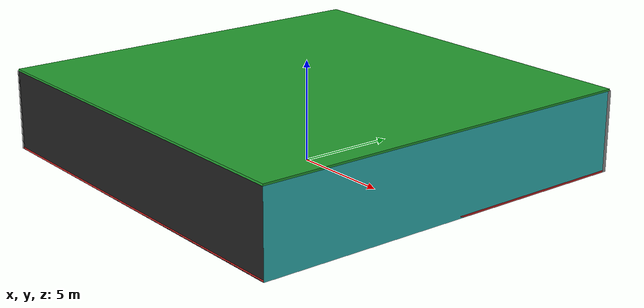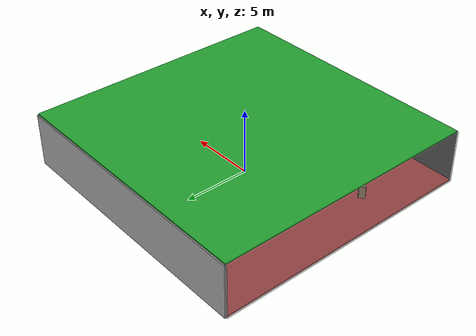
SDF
<sdf version="1.4">
 <world name="default">
  <physics type="ode">
   <max_step_size>0.001</max_step_size>
   <real_time_factor>1</real_time_factor>
   <real_time_update_rate>1000</real_time_update_rate>
   <gravity>0 0 -9.8</gravity>
  </physics>
  <scene><ambient>0.4 0.4 0.4 1</ambient><background>0.7 0.7 0.7 1</background><shadows>1</shadows></scene>
  <model name="Surrounding">
   <static>1</static>
   <link name="Ceiling">
    <collision name="Ceiling_Collision"><geometry><box><size>20 20 0.1</size></box></geometry></collision>
    <visual name="Ceiling_Visual">
     <geometry><box><size>20 20 0.1</size></box></geometry>
     <material>
      <script><uri>file://media/materials/scripts/gazebo.material</uri><name>Gazebo/GreenGlow</name></script>
     </material>
    </visual>
    <pose>0 0 4.05 0 0 0</pose>
   </link>
   <link name="Wall_South">
    <collision name="Wall_South_Collision">
     <geometry><box><size>20 0 4</size></box></geometry>
     <pose>0 0 2 0 -0 0</pose>
    </collision>
    <visual name="Wall_South_Visual">
     <pose>0 0 2 0 -0 0</pose>
     <geometry><box><size>20 0 4</size></box></geometry>
     <material>
      <script><uri>file://media/materials/scripts/gazebo.material</uri><name>Gazebo/Black</name></script>
     </material>
    </visual>
    <velocity_decay><linear>0</linear><angular>0</angular></velocity_decay>
    <pose>0 -10 0 0 -0 0</pose>
   </link>
   <link name="Wall_East">
    <collision name="Wall_21_Collision">
     <geometry><box><size>20 0 4</size></box></geometry>
     <pose>0 0 2 0 -0 0</pose>
    </collision>
    <visual name="Wall_21_Visual">
     <pose>0 0 2 0 -0 0</pose>
     <geometry><box><size>20 0 4</size></box></geometry>
     <material>
      <script>
       <uri>file://media/materials/scripts/gazebo.material</uri>
       <name>Gazebo/TurquoiseGlowOutline</name>
      </script>
     </material>
    </visual>
    <velocity_decay><linear>0</linear><angular>0</angular></velocity_decay>
    <pose>10 0 0 0 -0 1.5708</pose>
   </link>
   <link name="Wall_North">
    <collision name="Wall_22_Collision">
     <geometry><box><size>20 0.2 4</size></box></geometry>
     <pose>0 0 2 0 -0 0</pose>
    </collision>
    <visual name="Wall_22_Visual">
     <pose>0 0 2 0 -0 0</pose>
     <geometry><box><size>20 0.2 4</size></box></geometry>
     <material>
      <script><uri>file://media/materials/scripts/gazebo.material</uri><name>Gazebo/GreyGradientSky</name></script>
     </material>
    </visual>
    <velocity_decay><linear>0</linear><angular>0</angular></velocity_decay>
    <pose>0 10 0 0 -0 0</pose>
   </link>
   <link name="Wall_West">
    <collision name="Wall_23_Collision">
     <geometry><box><size>20 0.2 4</size></box></geometry>
     <pose>0 0 2 0 -0 0</pose>
    </collision>
    <visual name="Wall_23_Visual">
     <pose>0 0 2 0 -0 0</pose>
     <geometry><box><size>20 0.2 4</size></box></geometry>
     <material>
      <script><uri>file://media/materials/scripts/gazebo.material</uri><name>Gazebo/GreyTransparent</name></script>
     </material>
    </visual>
    <velocity_decay><linear>0</linear><angular>0</angular></velocity_decay>
    <pose>-10 0 0 0 0 -1.5708</pose>
   </link>
   <link name="Ground_link">
    <collision name="collision">
     <pose>0 0 .05 0 -0 0</pose>
     <geometry><box><size>20 20 0.1</size></box></geometry>
    </collision>
    <visual name="visual">
     <pose>0 0 .05 0 -0 0</pose>
     <geometry><box><size>20 20 0.1</size></box></geometry>
     <material>
      <script><uri>file://media/materials/scripts/gazebo.material</uri><name>Gazebo/RedGlow</name></script>
     </material>
    </visual>
   </link>
   <static>1</static>
  </model>
  <spherical_coordinates>
   <surface_model>EARTH_WGS84</surface_model>
   <latitude_deg>0</latitude_deg>
   <longitude_deg>0</longitude_deg>
   <elevation>0</elevation>
   <heading_deg>0</heading_deg>
  </spherical_coordinates>
  <light name="lightball_0" type="diffuse">
   <diffuse>0.8 0.8 0.8 1</diffuse>
   <specular>0.2 0.2 0.2 1</specular>
   <attenuation>
    <range>100</range>
    <constant>0.7</constant>
    <linear>0.01</linear>
    <quadratic>0.001</quadratic>
   </attenuation>
   <direction>-0.5 0.1 -0.9</direction>
   <pose>-3.5406376875 -1.98281898903 2.56265167737 0 0 0</pose>
  </light>
  <light name="lightball_1" type="diffuse">
   <diffuse>0.8 0.8 0.8 1</diffuse>
   <specular>0.2 0.2 0.2 1</specular>
   <attenuation>
    <range>100</range>
    <constant>0.7</constant>
    <linear>0.01</linear>
    <quadratic>0.001</quadratic>
   </attenuation>
   <direction>-0.5 0.1 -0.9</direction>
   <pose>2.1342386142 -8.30035735702 1.33979763222 0 0 0</pose>
  </light>
  <light name="lightball_2" type="diffuse">
   <diffuse>0.8 0.8 0.8 1</diffuse>
   <specular>0.2 0.2 0.2 1</specular>
   <attenuation>
    <range>100</range>
    <constant>0.7</constant>
    <linear>0.01</linear>
    <quadratic>0.001</quadratic>
   </attenuation>
   <direction>-0.5 0.1 -0.9</direction>
   <pose>3.06959404905 -4.86144332229 2.17067382601 0 0 0</pose>
  </light>
  <light name="lightball_3" type="diffuse">
   <diffuse>0.8 0.8 0.8 1</diffuse>
   <specular>0.2 0.2 0.2 1</specular>
   <attenuation>
    <range>100</range>
    <constant>0.7</constant>
    <linear>0.01</linear>
    <quadratic>0.001</quadratic>
   </attenuation>
   <direction>-0.5 0.1 -0.9</direction>
   <pose>2.58732786285 5.21735314435 2.89639586488 0 0 0</pose>
  </light>
  <light name="lightball_4" type="diffuse">
   <diffuse>0.8 0.8 0.8 1</diffuse>
   <specular>0.2 0.2 0.2 1</specular>
   <attenuation>
    <range>100</range>
    <constant>0.7</constant>
    <linear>0.01</linear>
    <quadratic>0.001</quadratic>
   </attenuation>
   <direction>-0.5 0.1 -0.9</direction>
   <pose>0.873962123873 3.8002763897 3.74303629697 0 0 0</pose>
  </light>
  <light name="lightball_5" type="diffuse">
   <diffuse>0.8 0.8 0.8 1</diffuse>
   <specular>0.2 0.2 0.2 1</specular>
   <attenuation>
    <range>100</range>
    <constant>0.7</constant>
    <linear>0.01</linear>
    <quadratic>0.001</quadratic>
   </attenuation>
   <direction>-0.5 0.1 -0.9</direction>
   <pose>-0.0454027788974 8.79824615486 3.7974220009 0 0 0</pose>
  </light>
  <light name="lightball_6" type="diffuse">
   <diffuse>0.8 0.8 0.8 1</diffuse>
   <specular>0.2 0.2 0.2 1</specular>
   <attenuation>
    <range>100</range>
    <constant>0.7</constant>
    <linear>0.01</linear>
    <quadratic>0.001</quadratic>
   </attenuation>
   <direction>-0.5 0.1 -0.9</direction>
   <pose>-0.0493920114468 6.06656837011 0.533188604779 0 0 0</pose>
  </light>
  <light name="lightball_7" type="diffuse">
   <diffuse>0.8 0.8 0.8 1</diffuse>
   <specular>0.2 0.2 0.2 1</specular>
   <attenuation>
    <range>100</range>
    <constant>0.7</constant>
    <linear>0.01</linear>
    <quadratic>0.001</quadratic>
   </attenuation>
   <direction>-0.5 0.1 -0.9</direction>
   <pose>0.328331606296 -8.48804746746 3.25795563925 0 0 0</pose>
  </light>
  <light name="lightball_8" type="diffuse">
   <diffuse>0.8 0.8 0.8 1</diffuse>
   <specular>0.2 0.2 0.2 1</specular>
   <attenuation>
    <range>100</range>
    <constant>0.7</constant>
    <linear>0.01</linear>
    <quadratic>0.001</quadratic>
   </attenuation>
   <direction>-0.5 0.1 -0.9</direction>
   <pose>9.11760690693 3.82834091457 0.686337764047 0 0 0</pose>
  </light>
  <light name="lightball_9" type="diffuse">
   <diffuse>0.8 0.8 0.8 1</diffuse>
   <specular>0.2 0.2 0.2 1</specular>
   <attenuation>
    <range>100</range>
    <constant>0.7</constant>
    <linear>0.01</linear>
    <quadratic>0.001</quadratic>
   </attenuation>
   <direction>-0.5 0.1 -0.9</direction>
   <pose>3.7218595875 0.00740599214719 1.72214025375 0 0 0</pose>
  </light>
  <light name="lightball_10" type="diffuse">
   <diffuse>0.8 0.8 0.8 1</diffuse>
   <specular>0.2 0.2 0.2 1</specular>
   <attenuation>
    <range>100</range>
    <constant>0.7</constant>
    <linear>0.01</linear>
    <quadratic>0.001</quadratic>
   </attenuation>
   <direction>-0.5 0.1 -0.9</direction>
   <pose>-8.90768655451 4.48742491882 1.36541979581 0 0 0</pose>
  </light>
  <light name="lightball_11" type="diffuse">
   <diffuse>0.8 0.8 0.8 1</diffuse>
   <specular>0.2 0.2 0.2 1</specular>
   <attenuation>
    <range>100</range>
    <constant>0.7</constant>
    <linear>0.01</linear>
    <quadratic>0.001</quadratic>
   </attenuation>
   <direction>-0.5 0.1 -0.9</direction>
   <pose>-2.54013747808 -8.56146595017 1.65000515296 0 0 0</pose>
  </light>
  <light name="lightball_12" type="diffuse">
   <diffuse>0.8 0.8 0.8 1</diffuse>
   <specular>0.2 0.2 0.2 1</specular>
   <attenuation>
    <range>100</range>
    <constant>0.7</constant>
    <linear>0.01</linear>
    <quadratic>0.001</quadratic>
   </attenuation>
   <direction>-0.5 0.1 -0.9</direction>
   <pose>-5.72457074629 -0.65376936633 2.1433195918 0 0 0</pose>
  </light>
  <include><uri>model://cabinet</uri><pose>-7.34351263838 -4.00895268041 0 0 0 2.32234759126</pose></include>
  <include>
   <uri>model://construction_cone</uri>
   <pose>-4.38923709794 4.44373314124 0 0 0 1.47887055768</pose>
  </include>
  <include><uri>model://cabinet</uri><pose>-0.647351469151 3.64148721286 0 0 0 1.25064657691</pose></include>
  <include>
   <uri>model://robocup_3Dsim_goal</uri>
   <pose>1.40449510331 3.87758278612 0 0 0 0.330501535361</pose>
  </include>
  <include><uri>model://table</uri><pose>8.62026031502 -2.52574652992 0 0 0 1.07302760802</pose></include>
 </world>
</sdf>

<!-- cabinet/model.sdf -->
<sdf version="1.5">
  <model name="cabinet">
    <static>true</static>
    <link name="cabinet_bottom_plate">
      <inertial>
        <pose>0 0 -1 0 0 0</pose>
        <inertia>
          <ixx>2.050000</ixx>
          <ixy>0</ixy>
          <ixz>0</ixz>
          <iyy>2.050000</iyy>
          <iyz>0</iyz>
          <izz>2.050000</izz>
        </inertia>
        <mass>25.000000</mass>
      </inertial>
      <collision name="cabinet_bottom_plate_geom">
        <pose>0 0 0.010000 0 0 0</pose>
        <geometry>
          <box>
            <size>0.450000 0.450000 0.020000</size>
          </box>
        </geometry>
      </collision>
      <visual name="cabinet_bottom_plate_geom_visual">
        <pose>0 0 0.010000 0 0 0</pose>
        <geometry>
          <box>
            <size>0.450000 0.450000 0.020000</size>
          </box>
        </geometry>
        <material>
          <script>
            <uri>model://media/materials/scripts/gazebo.material</uri>
            <name>Gazebo/Wood</name>
          </script>
        </material>
      </visual>
      <collision name="cabinet_bottom_plate_geom_cabinet_back_plate">
        <pose>0.235000 0 0.510000 0 0 0</pose>
        <geometry>
          <box>
            <size>0.020000 0.450000 1.020000</size>
          </box>
        </geometry>
      </collision>
      <visual name="cabinet_bottom_plate_geom_cabinet_back_plate_visual">
        <pose>0.235000 0 0.510000 0 0 0</pose>
        <geometry>
          <box>
            <size>0.020000 0.450000 1.020000</size>
          </box>
        </geometry>
        <material>
          <script>
            <uri>model://media/materials/scripts/gazebo.material</uri>
            <name>Gazebo/Wood</name>
          </script>
        </material>
      </visual>
      <collision name="cabinet_bottom_plate_geom_cabinet_left_plate">
        <pose>0 0.235000 0.510000 0 0 0</pose>
        <geometry>
          <box>
            <size>0.450000 0.020000 1.020000</size>
          </box>
        </geometry>
      </collision>
      <visual name="cabinet_bottom_plate_geom_cabinet_left_plate_visual">
        <pose>0 0.235000 0.510000 0 0 0</pose>
        <geometry>
          <box>
            <size>0.450000 0.020000 1.020000</size>
          </box>
        </geometry>
        <material>
          <script>
            <uri>model://media/materials/scripts/gazebo.material</uri>
            <name>Gazebo/Wood</name>
          </script>
        </material>
      </visual>
      <collision name="cabinet_bottom_plate_geom_cabinet_middle_plate">
        <pose>0 0 0.510000 0 0 0</pose>
        <geometry>
          <box>
            <size>0.450000 0.450000 0.020000</size>
          </box>
        </geometry>
      </collision>
      <visual name="cabinet_bottom_plate_geom_cabinet_middle_plate_visual">
        <pose>0 0 0.510000 0 0 0</pose>
        <geometry>
          <box>
            <size>0.450000 0.450000 0.020000</size>
          </box>
        </geometry>
        <material>
          <script>
            <uri>model://media/materials/scripts/gazebo.material</uri>
            <name>Gazebo/Wood</name>
          </script>
        </material>
      </visual>
      <collision name="cabinet_bottom_plate_geom_cabinet_right_plate">
        <pose>0 -0.235000 0.510000 0 0 0</pose>
        <geometry>
          <box>
            <size>0.450000 0.020000 1.020000</size>
          </box>
        </geometry>
      </collision>
      <visual name="cabinet_bottom_plate_geom_cabinet_right_plate_visual">
        <pose>0 -0.235000 0.510000 0 0 0</pose>
        <geometry>
          <box>
            <size>0.450000 0.020000 1.020000</size>
          </box>
        </geometry>
        <material>
          <script>
            <uri>model://media/materials/scripts/gazebo.material</uri>
            <name>Gazebo/Wood</name>
          </script>
        </material>
      </visual>
      <collision name="cabinet_bottom_plate_geom_cabinet_top_plate">
        <pose>0 0 1.010000 0 0 0</pose>
        <geometry>
          <box>
            <size>0.450000 0.450000 0.020000</size>
          </box>
        </geometry>
      </collision>
      <visual name="cabinet_bottom_plate_geom_cabinet_top_plate_visual">
        <pose>0 0 1.010000 0 0 0</pose>
        <geometry>
          <box>
            <size>0.450000 0.450000 0.020000</size>
          </box>
        </geometry>
        <material>
          <script>
            <uri>model://media/materials/scripts/gazebo.material</uri>
            <name>Gazebo/Wood</name>
          </script>
        </material>
      </visual>
    </link>
  </model>
</sdf>

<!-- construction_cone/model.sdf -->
<sdf version="1.5">
  <model name="Construction Cone">
    <link name="link">
      <collision name="collision">
        <geometry>
          <mesh>
            <scale>10 10 10</scale>
            <uri>file://isr-testbed/construction_cone/meshes/construction_cone.dae</uri>
          </mesh>
        </geometry>
      </collision>
      <visual name="visual">
        <geometry>
          <mesh>
            <scale>10 10 10</scale>
            <uri>file://isr-testbed/construction_cone/meshes/construction_cone.dae</uri>
          </mesh>
        </geometry>
      </visual>
    </link>
  </model>
</sdf>

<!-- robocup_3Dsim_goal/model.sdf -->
<sdf version="1.5">
  <model name="robocup_3d_goal">
    <static>true</static>
    <link name="left_post">
      <pose>0 1.05 0.45 0 0 0</pose>
      <collision name="collision">
        <geometry>
          <cylinder>
            <radius>0.05</radius>
            <length>0.9</length>
          </cylinder>
        </geometry>
      </collision>
      <visual name="visual">
        <geometry>
          <cylinder>
            <radius>0.05</radius>
            <length>0.9</length>
          </cylinder>
        </geometry>
        <material>
          <script>
            <uri>file://media/materials/scripts/gazebo.material</uri>
            <name>Gazebo/ZincYellow</name>
          </script>
        </material>
      </visual>
    </link>
    <link name="left_support_horiz_lower">
      <pose>0.30 1.05 0.01 0 0 0</pose>
      <collision name="collision">
        <geometry>
          <box>
            <size>0.50 0.02 0.02</size>
          </box>
        </geometry>
      </collision>
      <visual name="visual">
        <geometry>
          <box>
            <size>0.50 0.02 0.02</size>
          </box>
        </geometry>
        <material>
          <script>
            <uri>file://media/materials/scripts/gazebo.material</uri>
            <name>Gazebo/White</name>
          </script>
        </material>
      </visual>
    </link>
    <link name="left_support_horiz_upper">
      <pose>0.30 1.05 0.79 0 0 0</pose>
      <collision name="collision">
        <geometry>
          <box>
            <size>0.50 0.02 0.02</size>
          </box>
        </geometry>
      </collision>
      <visual name="visual">
        <geometry>
          <box>
            <size>0.50 0.02 0.02</size>
          </box>
        </geometry>
        <material>
          <script>
            <uri>file://media/materials/scripts/gazebo.material</uri>
            <name>Gazebo/White</name>
          </script>
        </material>
      </visual>
    </link>
    <link name="left_support_vertical">
      <pose>0.56 1.05 0.4 0 1.5708 0</pose>
      <collision name="collision">
        <geometry>
          <box>
            <size>0.80 0.02 0.02</size>
          </box>
        </geometry>
      </collision>
      <visual name="visual">
        <geometry>
          <box>
            <size>0.80 0.02 0.02</size>
          </box>
        </geometry>
        <material>
          <script>
            <uri>file://media/materials/scripts/gazebo.material</uri>
            <name>Gazebo/White</name>
          </script>
        </material>
      </visual>
    </link>
    <link name="right_support_horiz_lower">
      <pose>0.30 -1.05 0.01 0 0 0</pose>
      <collision name="collision">
        <geometry>
          <box>
            <size>0.50 0.02 0.02</size>
          </box>
        </geometry>
      </collision>
      <visual name="visual">
        <geometry>
          <box>
            <size>0.50 0.02 0.02</size>
          </box>
        </geometry>
        <material>
          <script>
            <uri>file://media/materials/scripts/gazebo.material</uri>
            <name>Gazebo/White</name>
          </script>
        </material>
      </visual>
    </link>
    <link name="right_support_horiz_upper">
      <pose>0.30 -1.05 0.79 0 0 0</pose>
      <collision name="collision">
        <geometry>
          <box>
            <size>0.50 0.02 0.02</size>
          </box>
        </geometry>
      </collision>
      <visual name="visual">
        <geometry>
          <box>
            <size>0.50 0.02 0.02</size>
          </box>
        </geometry>
        <material>
          <script>
            <uri>file://media/materials/scripts/gazebo.material</uri>
            <name>Gazebo/White</name>
          </script>
        </material>
      </visual>
    </link>
    <link name="right_support_vertical">
      <pose>0.56 -1.05 0.4 0 1.5708 0</pose>
      <collision name="collision">
        <geometry>
          <box>
            <size>0.80 0.02 0.02</size>
          </box>
        </geometry>
      </collision>
      <visual name="visual">
        <geometry>
          <box>
            <size>0.80 0.02 0.02</size>
          </box>
        </geometry>
        <material>
          <script>
            <uri>file://media/materials/scripts/gazebo.material</uri>
            <name>Gazebo/White</name>
          </script>
        </material>
      </visual>
    </link>
    <link name="center_support_horiz_lower">
      <pose>0.56 0 0.01 0 1.5708 0</pose>
      <collision name="collision">
        <geometry>
          <box>
            <size>0.02 2.08 0.02</size>
          </box>
        </geometry>
      </collision>
      <visual name="visual">
        <geometry>
          <box>
            <size>0.02 2.08 0.02</size>
          </box>
        </geometry>
        <material>
          <script>
            <uri>file://media/materials/scripts/gazebo.material</uri>
            <name>Gazebo/White</name>
          </script>
        </material>
      </visual>
    </link>
    <link name="center_support_horiz_upper">
      <pose>0.56 0 0.79 0 1.5708 0</pose>
      <collision name="collision">
        <geometry>
          <box>
            <size>0.02 2.08 0.02</size>
          </box>
        </geometry>
      </collision>
      <visual name="visual">
        <geometry>
          <box>
            <size>0.02 2.08 0.02</size>
          </box>
        </geometry>
        <material>
          <script>
            <uri>file://media/materials/scripts/gazebo.material</uri>
            <name>Gazebo/White</name>
          </script>
        </material>
      </visual>
    </link>
    <link name="right_post">
      <pose>0 -1.05 0.45 0 0 0</pose>
      <collision name="collision">
        <geometry>
          <cylinder>
            <radius>0.05</radius>
            <length>0.9</length>
          </cylinder>
        </geometry>
      </collision>
      <visual name="visual">
        <geometry>
          <cylinder>
            <radius>0.05</radius>
            <length>0.9</length>
          </cylinder>
        </geometry>
        <material>
          <script>
            <uri>file://media/materials/scripts/gazebo.material</uri>
            <name>Gazebo/ZincYellow</name>
          </script>
        </material>
      </visual>
    </link>
    <link name="crossbar">
      <pose>0 0 0.85 1.57 1.57 0</pose>
      <collision name="collision">
        <geometry>
          <cylinder>
            <radius>0.05</radius>
            <length>2.0</length>
          </cylinder>
        </geometry>
      </collision>
      <visual name="visual">
        <geometry>
          <cylinder>
            <radius>0.05</radius>
            <length>2.0</length>
          </cylinder>
        </geometry>
        <material>
          <script>
            <uri>file://media/materials/scripts/gazebo.material</uri>
            <name>Gazebo/ZincYellow</name>
          </script>
        </material>
      </visual>
    </link>
    <link name="center_net">
      <pose>0.56 0 0.40 0 0 0</pose>
      <collision name="collision">
        <geometry>
          <box>
            <size>0.01 2.1 0.80</size>
          </box>
        </geometry>
      </collision>
      <visual name="visual">
        <geometry>
          <box>
            <size>0.01 2.1 0.80</size>
          </box>
        </geometry>
        <material>
          <script>
            <uri>model://../model_source/models/robocup09_spl_field/materials/scripts/</uri>
            <uri>model://../model_source/models/robocup09_spl_field/materials/textures/</uri>
            <name>RoboCup/Net</name>
          </script>
        </material>
      </visual>
    </link>
    <link name="left_net">
      <pose>0.30 1.05 0.40 0 0 0</pose>
      <collision name="collision">
        <geometry>
          <box>
            <size>0.50 0.01 0.76</size>
          </box>
        </geometry>
      </collision>
      <visual name="visual">
        <geometry>
          <box>
            <size>0.50 0.01 0.76</size>
          </box>
        </geometry>
        <material>
          <script>
            <uri>model://../model_source/models/robocup09_spl_field/materials/scripts/</uri>
            <uri>model://../model_source/models/robocup09_spl_field/materials/textures/</uri>
            <name>RoboCup/Net</name>
          </script>
        </material>
      </visual>
    </link>
    <link name="right_net">
      <pose>0.30 -1.05 0.40 0 0 0</pose>
      <collision name="collision">
        <geometry>
          <box>
            <size>0.50 0.01 0.76</size>
          </box>
        </geometry>
      </collision>
      <visual name="visual">
        <geometry>
          <box>
            <size>0.50 0.01 0.76</size>
          </box>
        </geometry>
        <material>
          <script>
            <uri>model://../model_source/models/robocup09_spl_field/materials/scripts/</uri>
            <uri>model://../model_source/models/robocup09_spl_field/materials/textures/</uri>
            <name>RoboCup/Net</name>
          </script>
        </material>
      </visual>
    </link>
  </model>
</sdf>

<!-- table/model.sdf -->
<sdf version="1.5">
  <model name="table">
    <static>true</static>
    <link name="link">
      <collision name="surface">
        <pose>0 0 1.0 0 0 0</pose>
        <geometry>
          <box>
            <size>1.5 0.8 0.03</size>
          </box>
        </geometry>
        <surface>
          <friction>
            <ode>
              <mu>0.6</mu>
              <mu2>0.6</mu2>
            </ode>
          </friction>
        </surface>
      </collision>
      <visual name="visual1">
        <pose>0 0 1.0 0 0 0</pose>
        <geometry>
          <box>
            <size>1.5 0.8 0.03</size>
          </box>
        </geometry>
        <material>
          <script>
            <uri>model://media/materials/scripts/gazebo.material</uri>
            <name>Gazebo/Wood</name>
          </script>
        </material>
      </visual>
      <collision name="front_left_leg">
        <pose>0.68 0.38 0.5 0 0 0</pose>
        <geometry>
          <cylinder>
            <radius>0.02</radius>
            <length>1.0</length>
          </cylinder>
        </geometry>
      </collision>
      <visual name="front_left_leg">
        <pose>0.68 0.38 0.5 0 0 0</pose>
        <geometry>
          <cylinder>
            <radius>0.02</radius>
            <length>1.0</length>
          </cylinder>
        </geometry>
        <material>
          <script>
            <uri>model://media/materials/scripts/gazebo.material</uri>
            <name>Gazebo/Grey</name>
          </script>
        </material>
      </visual>
      <collision name="front_right_leg">
        <pose>0.68 -0.38 0.5 0 0 0</pose>
        <geometry>
          <cylinder>
            <radius>0.02</radius>
            <length>1.0</length>
          </cylinder>
        </geometry>
      </collision>
      <visual name="front_right_leg">
        <pose>0.68 -0.38 0.5 0 0 0</pose>
        <geometry>
          <cylinder>
            <radius>0.02</radius>
            <length>1.0</length>
          </cylinder>
        </geometry>
        <material>
          <script>
            <uri>model://media/materials/scripts/gazebo.material</uri>
            <name>Gazebo/Grey</name>
          </script>
        </material>
      </visual>
      <collision name="back_right_leg">
        <pose>-0.68 -0.38 0.5 0 0 0</pose>
        <geometry>
          <cylinder>
            <radius>0.02</radius>
            <length>1.0</length>
          </cylinder>
        </geometry>
      </collision>
      <visual name="back_right_leg">
        <pose>-0.68 -0.38 0.5 0 0 0</pose>
        <geometry>
          <cylinder>
            <radius>0.02</radius>
            <length>1.0</length>
          </cylinder>
        </geometry>
        <material>
          <script>
            <uri>model://media/materials/scripts/gazebo.material</uri>
            <name>Gazebo/Grey</name>
          </script>
        </material>
      </visual>
      <collision name="back_left_leg">
        <pose>-0.68 0.38 0.5 0 0 0</pose>
        <geometry>
          <cylinder>
            <radius>0.02</radius>
            <length>1.0</length>
          </cylinder>
        </geometry>
      </collision>
      <visual name="back_left_leg">
        <pose>-0.68 0.38 0.5 0 0 0</pose>
        <geometry>
          <cylinder>
            <radius>0.02</radius>
            <length>1.0</length>
          </cylinder>
        </geometry>
        <material>
          <script>
            <uri>model://media/materials/scripts/gazebo.material</uri>
            <name>Gazebo/Grey</name>
          </script>
        </material>
      </visual>
    </link>
  </model>
</sdf>
